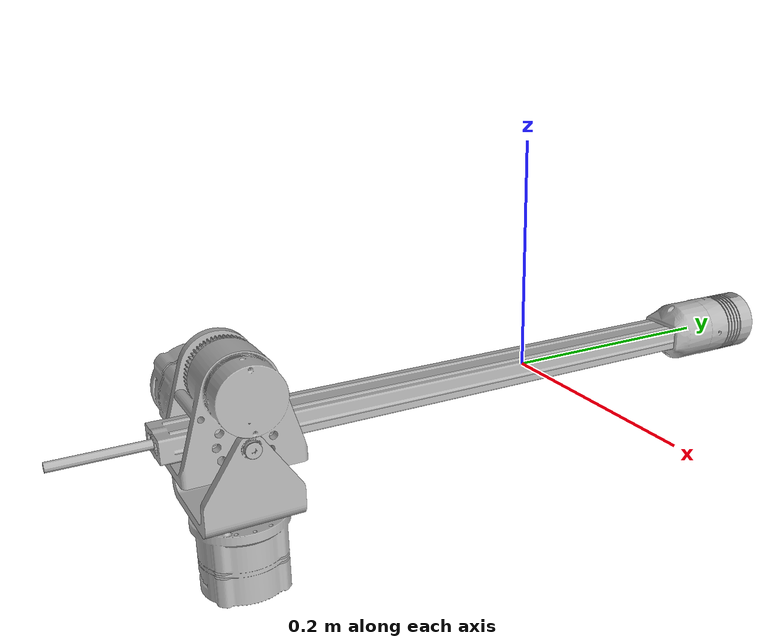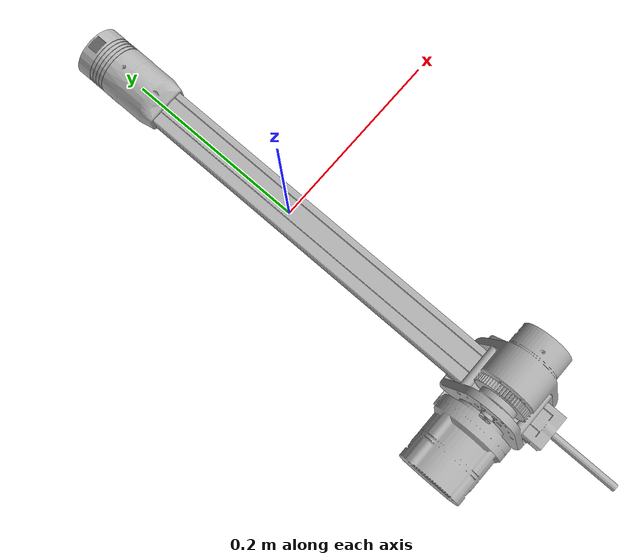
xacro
<?xml version="1.0" ?>
<robot name="TandP_URDF" xmlns:xacro="http://www.ros.org/wiki/xacro">

<xacro:include filename="$(find TandP_URDF_description)/urdf/materials.xacro" />
<xacro:include filename="$(find TandP_URDF_description)/urdf/TandP_URDF.trans" />
<xacro:include filename="$(find TandP_URDF_description)/urdf/TandP_URDF.gazebo" />
<link name="base_link">
  <inertial>
    <origin xyz="0.0001845100622695866 -0.27048529128426696 -0.10149358010122299" rpy="0 0 0"/>
    <mass value="0.19985280913819886"/>
    <inertia ixx="0.000194" iyy="0.000194" izz="0.000192" ixy="-0.0" iyz="0.0" ixz="1e-06"/>
  </inertial>
  <visual>
    <origin xyz="0 0 0" rpy="0 0 0"/>
    <geometry>
      <mesh filename="file://$(find TandP_URDF_description)/meshes/base_link.stl" scale="0.001 0.001 0.001"/>
    </geometry>
    <material name="silver"/>
  </visual>
  <collision>
    <origin xyz="0 0 0" rpy="0 0 0"/>
    <geometry>
      <mesh filename="file://$(find TandP_URDF_description)/meshes/base_link.stl" scale="0.001 0.001 0.001"/>
    </geometry>
  </collision>
</link>

<link name="jig_1">
  <inertial>
    <origin xyz="5.453141234135708e-09 0.22451958356493423 7.089573490965578e-10" rpy="0 0 0"/>
    <mass value="0.2404957977531375"/>
    <inertia ixx="0.007197" iyy="2e-06" izz="0.007197" ixy="-0.0" iyz="-0.0" ixz="0.0"/>
  </inertial>
  <visual>
    <origin xyz="0.0 0.3315 -0.0" rpy="0 0 0"/>
    <geometry>
      <mesh filename="file://$(find TandP_URDF_description)/meshes/jig_1.stl" scale="0.001 0.001 0.001"/>
    </geometry>
    <material name="silver"/>
  </visual>
  <collision>
    <origin xyz="0.0 0.3315 -0.0" rpy="0 0 0"/>
    <geometry>
      <mesh filename="file://$(find TandP_URDF_description)/meshes/jig_1.stl" scale="0.001 0.001 0.001"/>
    </geometry>
  </collision>
</link>

<link name="C_1">
  <inertial>
    <origin xyz="0.009127819583737668 0.3353185022812904 0.015337606079264546" rpy="0 0 0"/>
    <mass value="0.7627498608127092"/>
    <inertia ixx="0.025419" iyy="0.000223" izz="0.02547" ixy="-6.3e-05" iyz="-8e-05" ixz="-8e-06"/>
  </inertial>
  <visual>
    <origin xyz="0.01 0.3205 0.0165" rpy="0 0 0"/>
    <geometry>
      <mesh filename="file://$(find TandP_URDF_description)/meshes/C_1.stl" scale="0.001 0.001 0.001"/>
    </geometry>
    <material name="silver"/>
  </visual>
  <collision>
    <origin xyz="0.01 0.3205 0.0165" rpy="0 0 0"/>
    <geometry>
      <mesh filename="file://$(find TandP_URDF_description)/meshes/C_1.stl" scale="0.001 0.001 0.001"/>
    </geometry>
  </collision>
</link>

<link name="B_1">
  <inertial>
    <origin xyz="0.03231922465191705 8.75691299954684e-05 0.014746886997160435" rpy="0 0 0"/>
    <mass value="0.6343642137283538"/>
    <inertia ixx="0.000916" iyy="0.000927" izz="0.000678" ixy="-5e-06" iyz="-4e-06" ixz="-3e-05"/>
  </inertial>
  <visual>
    <origin xyz="0.031 0.2705 -0.0" rpy="0 0 0"/>
    <geometry>
      <mesh filename="file://$(find TandP_URDF_description)/meshes/B_1.stl" scale="0.001 0.001 0.001"/>
    </geometry>
    <material name="silver"/>
  </visual>
  <collision>
    <origin xyz="0.031 0.2705 -0.0" rpy="0 0 0"/>
    <geometry>
      <mesh filename="file://$(find TandP_URDF_description)/meshes/B_1.stl" scale="0.001 0.001 0.001"/>
    </geometry>
  </collision>
</link>

<link name="A_1">
  <inertial>
    <origin xyz="-0.028180944336916466 -4.934640180698224e-06 0.04434916296612579" rpy="0 0 0"/>
    <mass value="0.5957076349917387"/>
    <inertia ixx="0.000928" iyy="0.001784" izz="0.001434" ixy="-0.0" iyz="0.0" ixz="0.000476"/>
  </inertial>
  <visual>
    <origin xyz="-0.0 0.2705 0.071" rpy="0 0 0"/>
    <geometry>
      <mesh filename="file://$(find TandP_URDF_description)/meshes/A_1.stl" scale="0.001 0.001 0.001"/>
    </geometry>
    <material name="silver"/>
  </visual>
  <collision>
    <origin xyz="-0.0 0.2705 0.071" rpy="0 0 0"/>
    <geometry>
      <mesh filename="file://$(find TandP_URDF_description)/meshes/A_1.stl" scale="0.001 0.001 0.001"/>
    </geometry>
  </collision>
</link>

<joint name="A" type="continuous">
  <origin xyz="0.01 -0.011 0.0165" rpy="0 0 0"/>
  <parent link="C_1"/>
  <child link="jig_1"/>
  <axis xyz="-0.0 1.0 -0.0"/>
</joint>

<joint name="B" type="prismatic">
  <origin xyz="0.021 -0.05 -0.0165" rpy="0 0 0"/>
  <parent link="B_1"/>
  <child link="C_1"/>
  <axis xyz="0.0 -1.0 0.0"/>
  <limit upper="0.0" lower="0.0" effort="100" velocity="100"/>
</joint>

<joint name="C" type="continuous">
  <origin xyz="-0.031 0.0 0.071" rpy="0 0 0"/>
  <parent link="A_1"/>
  <child link="B_1"/>
  <axis xyz="1.0 -0.0 0.0"/>
</joint>

<joint name="D" type="continuous">
  <origin xyz="0.0 -0.2705 -0.071" rpy="0 0 0"/>
  <parent link="base_link"/>
  <child link="A_1"/>
  <axis xyz="0.0 0.0 1.0"/>
</joint>

</robot>

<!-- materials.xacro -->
<robot name="TandP_URDF" xmlns:xacro="http://www.ros.org/wiki/xacro" >

<material name="silver">
  <color rgba="0.700 0.700 0.700 1.000"/>
</material>

</robot>

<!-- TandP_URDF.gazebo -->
<robot name="TandP_URDF" xmlns:xacro="http://www.ros.org/wiki/xacro" >

<xacro:property name="body_color" value="Gazebo/Silver" />

<gazebo>
  <plugin name="control" filename="libgazebo_ros_control.so"/>
</gazebo>
<gazebo reference="base_link">
  <material>${body_color}</material>
  <mu1>0.2</mu1>
  <mu2>0.2</mu2>
  <self_collide>true</self_collide>
  <gravity>true</gravity>
</gazebo>

<gazebo reference="jig_1">
  <material>${body_color}</material>
  <mu1>0.2</mu1>
  <mu2>0.2</mu2>
  <self_collide>true</self_collide>
</gazebo>

<gazebo reference="C_1">
  <material>${body_color}</material>
  <mu1>0.2</mu1>
  <mu2>0.2</mu2>
  <self_collide>true</self_collide>
</gazebo>

<gazebo reference="B_1">
  <material>${body_color}</material>
  <mu1>0.2</mu1>
  <mu2>0.2</mu2>
  <self_collide>true</self_collide>
</gazebo>

<gazebo reference="A_1">
  <material>${body_color}</material>
  <mu1>0.2</mu1>
  <mu2>0.2</mu2>
  <self_collide>true</self_collide>
</gazebo>

</robot>
